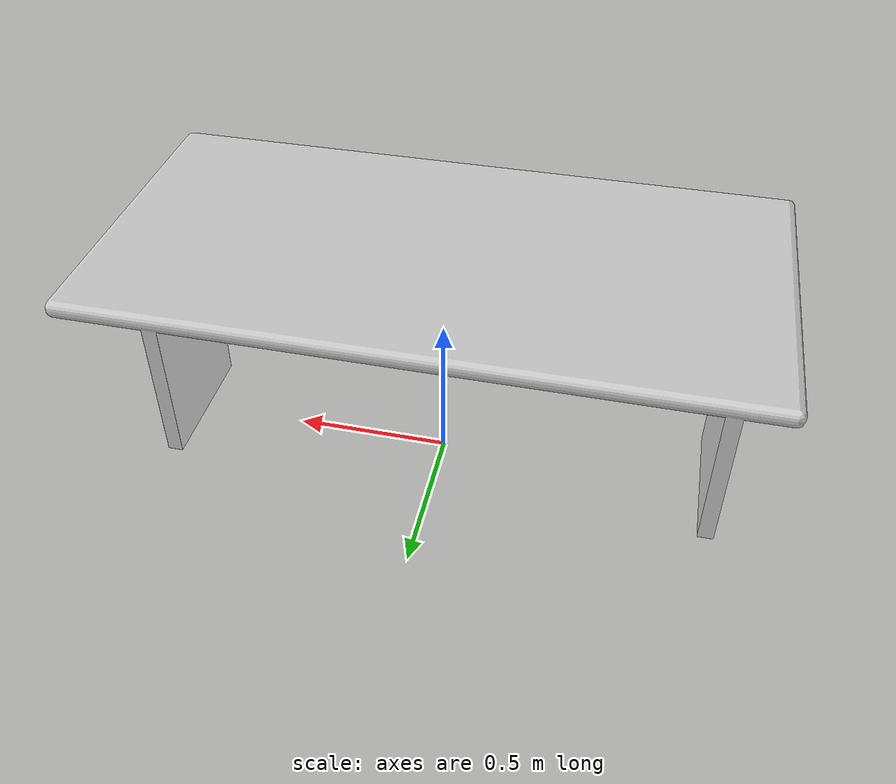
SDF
<?xml version="1.0" ?>
<sdf version="1.5">
  <model name="lab_table2">
    <static>true</static>
    <link name='defaultModel_0::custom_0'>
      <pose>0 0 0 0 0 0</pose>
      <gravity>1</gravity>
      <self_collide>0</self_collide>
      <kinematic>0</kinematic>
      <visual name='custom_0_visual'>
        <pose>0 0 0 0 0 0</pose>
        <geometry>
          <mesh>
            <uri>model://lab_table2/lab_table2.dae</uri>
            <scale>0.01 0.01 0.01</scale>
          </mesh>
        </geometry>
        <material>
          <script>
            <uri>file://media/materials/scripts/gazebo.material</uri>
            <name>Gazebo/LightGrey</name>
          </script>
        </material>
      </visual>
      <collision name='defaultModel_0::custom_0_collision'>
        <geometry>
          <mesh>
            <uri>model://lab_table2/lab_table2.dae</uri>
            <scale>0.01 0.01 0.01</scale>
          </mesh>
        </geometry>
        <pose>0 0 0 0 0 0</pose>
      </collision>
    </link>
  </model>
</sdf>
